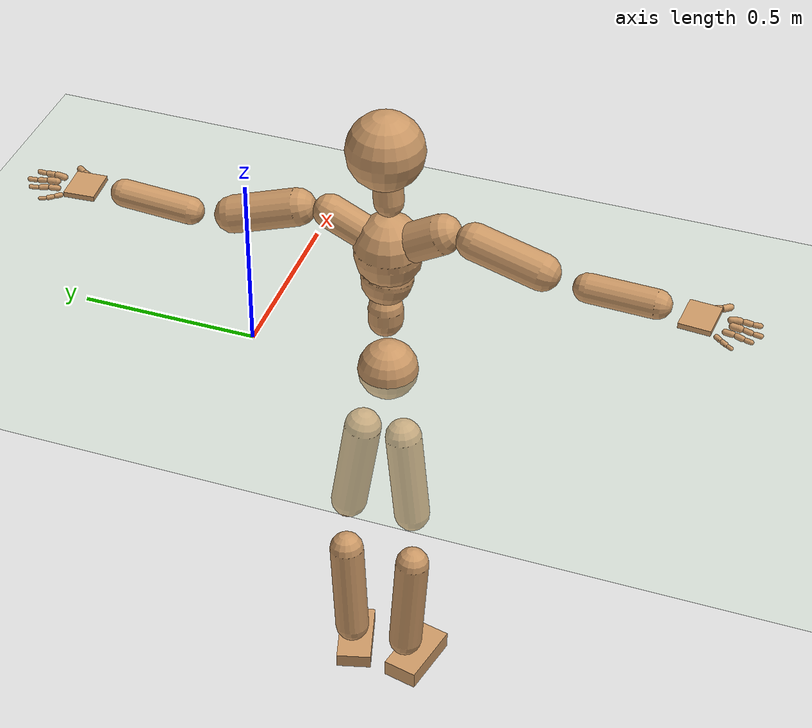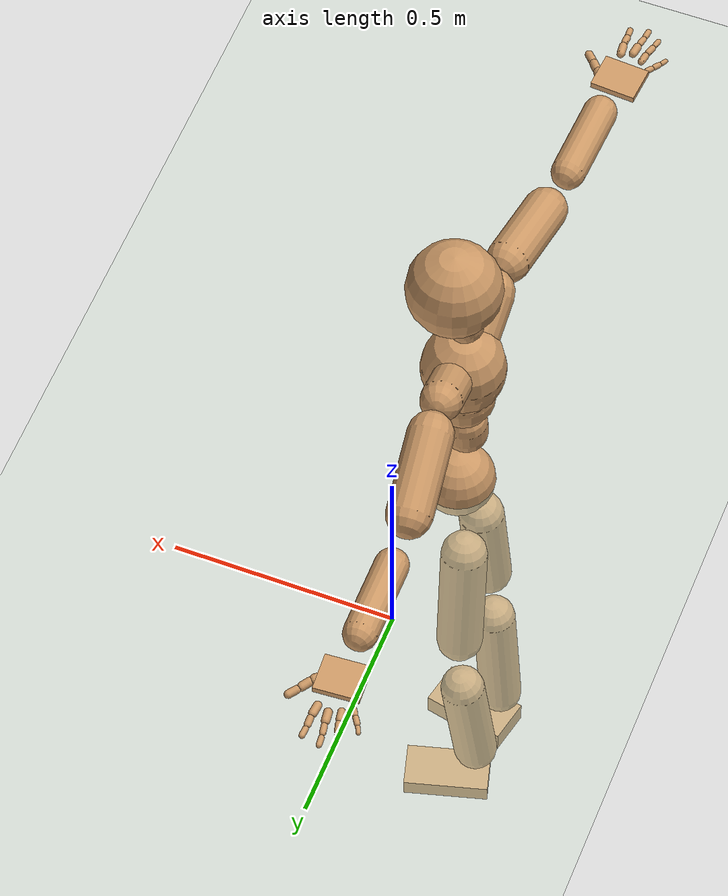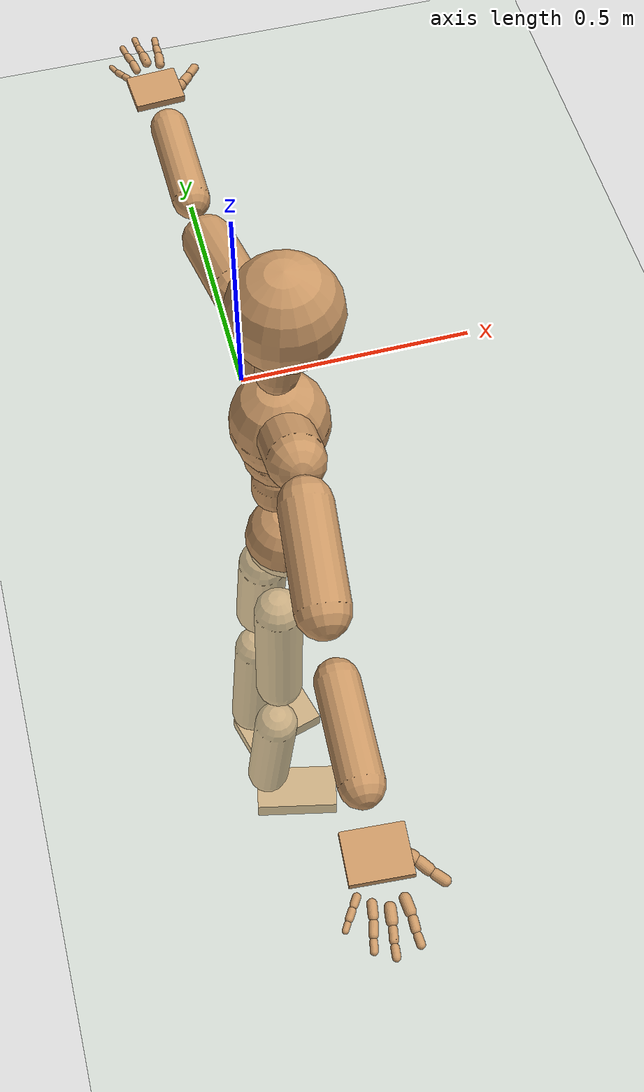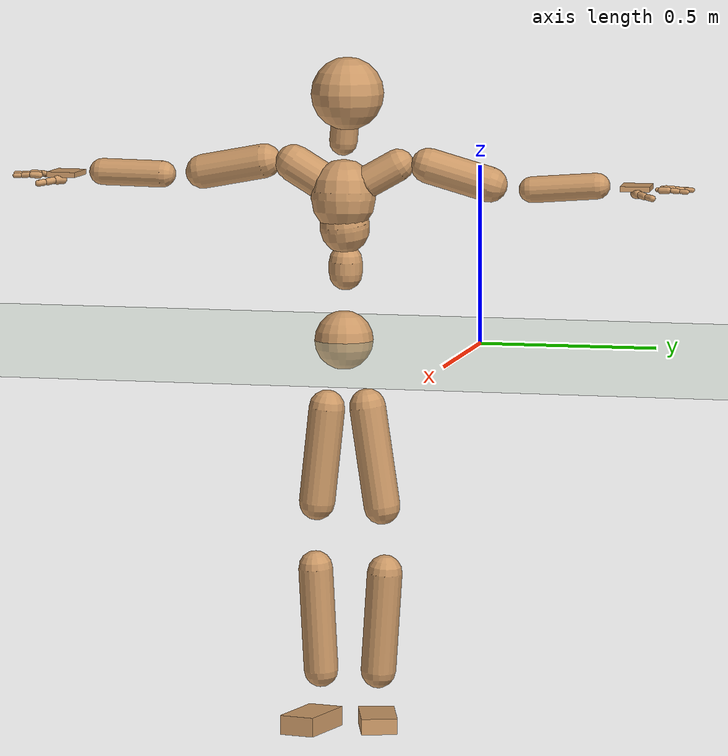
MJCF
<mujoco model="humanoid">
  <compiler coordinate="local" angle="radian"/>
  <default>
    <joint damping="0.0" armature="0.01" stiffness="0.0" limited="true"/>
    <geom conaffinity="1" condim="3" contype="7" margin="0.001" rgba="0.8 0.6 .4 1"/>
  </default>
  <asset>
    <texture type="skybox" builtin="gradient" rgb1=".4 .5 .6" rgb2="0 0 0" width="100" height="100"/>
    <texture builtin="flat" height="1278" mark="cross" markrgb="1 1 1" name="texgeom" random="0.01" rgb1="0.8 0.6 0.4" rgb2="0.8 0.6 0.4" type="cube" width="127"/>
    <texture builtin="checker" height="100" name="texplane" rgb1="0 0 0" rgb2="0.8 0.8 0.8" type="2d" width="100"/>
    <material name="MatPlane" reflectance="0.5" shininess="1" specular="1" texrepeat="60 60" texture="texplane"/>
    <material name="geom" texture="texgeom" texuniform="true"/>
  </asset>
  <worldbody>
    <light cutoff="100" diffuse="1 1 1" dir="-0 0 -1.3" directional="true" exponent="1" pos="0 0 1.3" specular=".1 .1 .1"/>
    <geom conaffinity="1" condim="3" name="floor" pos="0 0 0" rgba="0.8 0.9 0.8 1" size="100 100 .2" type="plane" material="MatPlane"/>
    <body name="Pelvis" pos="0.0002 -0.3917 -0.0027">
      <freejoint name="Pelvis"/>
      <geom type="sphere" contype="1" conaffinity="1" density="500" size="0.0834" pos="0.0000 0.0000 0.0000" name="Pelvis"/>
      <body name="L_Hip" pos="-0.0365 0.0457 -0.0985">
        <joint name="L_Hip_x" type="hinge" pos="0 0 0" axis="1 0 0" stiffness="800" damping="80" armature="0.02" range="-180.0000 180.0000"/>
        <joint name="L_Hip_y" type="hinge" pos="0 0 0" axis="0 1 0" stiffness="800" damping="80" armature="0.02" range="-180.0000 180.0000"/>
        <joint name="L_Hip_z" type="hinge" pos="0 0 0" axis="0 0 1" stiffness="800" damping="80" armature="0.02" range="-180.0000 180.0000"/>
        <geom type="capsule" contype="1" conaffinity="1" density="500" fromto="-0.0025 0.0135 -0.0950 -0.0101 0.0540 -0.3799" size="0.0519" name="L_Hip"/>
        <body name="L_Knee" pos="-0.0126 0.0675 -0.4749">
          <joint name="L_Knee_x" type="hinge" pos="0 0 0" axis="1 0 0" stiffness="800" damping="80" armature="0.02" range="-180.0000 180.0000"/>
          <joint name="L_Knee_y" type="hinge" pos="0 0 0" axis="0 1 0" stiffness="800" damping="80" armature="0.02" range="-180.0000 180.0000"/>
          <joint name="L_Knee_z" type="hinge" pos="0 0 0" axis="0 0 1" stiffness="800" damping="80" armature="0.02" range="-180.0000 180.0000"/>
          <geom type="capsule" contype="1" conaffinity="1" density="500" fromto="-0.0087 -0.0080 -0.0964 -0.0349 -0.0319 -0.3854" size="0.05" name="L_Knee"/>
          <body name="L_Ankle" pos="-0.0437 -0.0399 -0.4818">
            <joint name="L_Ankle_x" type="hinge" pos="0 0 0" axis="1 0 0" stiffness="800" damping="80" armature="0.02" range="-180.0000 180.0000"/>
            <joint name="L_Ankle_y" type="hinge" pos="0 0 0" axis="0 1 0" stiffness="800" damping="80" armature="0.02" range="-180.0000 180.0000"/>
            <joint name="L_Ankle_z" type="hinge" pos="0 0 0" axis="0 0 1" stiffness="800" damping="80" armature="0.02" range="-180.0000 180.0000"/>
            <geom type="box" contype="1" conaffinity="1" density="500" pos="0.0730 0.0202 -0.0355" size="0.0982 0.0512 0.0224" quat="0.9909 0.0000 0.0000 0.1343" name="L_Ankle"/>
            <body name="L_Toe" pos="0.146 0.0403 -0.0709">
              <joint name="L_Toe_x" type="hinge" pos="0 0 0" axis="1 0 0" stiffness="500" damping="50" armature="0.02" range="-180.0000 180.0000"/>
              <joint name="L_Toe_y" type="hinge" pos="0 0 0" axis="0 1 0" stiffness="500" damping="50" armature="0.02" range="-180.0000 180.0000"/>
              <joint name="L_Toe_z" type="hinge" pos="0 0 0" axis="0 0 1" stiffness="500" damping="50" armature="0.02" range="-180.0000 180.0000"/>
              <geom type="box" contype="1" conaffinity="1" density="500" pos="0.0000 0.0000 0.0345" size="0.001 0.0025 0.0011" quat="0.9903 0.0000 0.0000 0.1388" name="L_Toe"/>
            </body>
          </body>
        </body>
      </body>
      <body name="R_Hip" pos="-0.0316 -0.0471 -0.1085">
        <joint name="R_Hip_x" type="hinge" pos="0 0 0" axis="1 0 0" stiffness="800" damping="80" armature="0.02" range="-180.0000 180.0000"/>
        <joint name="R_Hip_y" type="hinge" pos="0 0 0" axis="0 1 0" stiffness="800" damping="80" armature="0.02" range="-180.0000 180.0000"/>
        <joint name="R_Hip_z" type="hinge" pos="0 0 0" axis="0 0 1" stiffness="800" damping="80" armature="0.02" range="-180.0000 180.0000"/>
        <geom type="capsule" contype="1" conaffinity="1" density="500" fromto="-0.0037 -0.0105 -0.0911 -0.0150 -0.0421 -0.3644" size="0.0511" name="R_Hip"/>
        <body name="R_Knee" pos="-0.0187 -0.0526 -0.4555">
          <joint name="R_Knee_x" type="hinge" pos="0 0 0" axis="1 0 0" stiffness="800" damping="80" armature="0.02" range="-180.0000 180.0000"/>
          <joint name="R_Knee_y" type="hinge" pos="0 0 0" axis="0 1 0" stiffness="800" damping="80" armature="0.02" range="-180.0000 180.0000"/>
          <joint name="R_Knee_z" type="hinge" pos="0 0 0" axis="0 0 1" stiffness="800" damping="80" armature="0.02" range="-180.0000 180.0000"/>
          <geom type="capsule" contype="1" conaffinity="1" density="500" fromto="-0.0082 0.0034 -0.0998 -0.0329 0.0135 -0.3993" size="0.0489" name="R_Knee"/>
          <body name="R_Ankle" pos="-0.0411 0.0169 -0.4991">
            <joint name="R_Ankle_x" type="hinge" pos="0 0 0" axis="1 0 0" stiffness="800" damping="80" armature="0.02" range="-180.0000 180.0000"/>
            <joint name="R_Ankle_y" type="hinge" pos="0 0 0" axis="0 1 0" stiffness="800" damping="80" armature="0.02" range="-180.0000 180.0000"/>
            <joint name="R_Ankle_z" type="hinge" pos="0 0 0" axis="0 0 1" stiffness="800" damping="80" armature="0.02" range="-180.0000 180.0000"/>
            <geom type="box" contype="1" conaffinity="1" density="500" pos="0.0760 -0.0165 -0.0349" size="0.0982 0.0512 0.0274" quat="0.9943 0.0000 0.0000 -0.1068" name="R_Ankle"/>
            <body name="R_Toe" pos="0.1519 -0.033 -0.0698">
              <joint name="R_Toe_x" type="hinge" pos="0 0 0" axis="1 0 0" stiffness="500" damping="50" armature="0.02" range="-180.0000 180.0000"/>
              <joint name="R_Toe_y" type="hinge" pos="0 0 0" axis="0 1 0" stiffness="500" damping="50" armature="0.02" range="-180.0000 180.0000"/>
              <joint name="R_Toe_z" type="hinge" pos="0 0 0" axis="0 0 1" stiffness="500" damping="50" armature="0.02" range="-180.0000 180.0000"/>
              <geom type="box" contype="1" conaffinity="1" density="500" pos="0.0000 0.0000 0.0288" size="0.001 0.0025 0.0011" quat="0.9951 0.0000 0.0000 -0.0993" name="R_Toe"/>
            </body>
          </body>
        </body>
      </body>
      <body name="Torso" pos="-0.0215 -0.0007 0.1192">
        <joint name="Torso_x" type="hinge" pos="0 0 0" axis="1 0 0" stiffness="1000" damping="100" armature="0.02" range="-180.0000 180.0000"/>
        <joint name="Torso_y" type="hinge" pos="0 0 0" axis="0 1 0" stiffness="1000" damping="100" armature="0.02" range="-180.0000 180.0000"/>
        <joint name="Torso_z" type="hinge" pos="0 0 0" axis="0 0 1" stiffness="1000" damping="100" armature="0.02" range="-180.0000 180.0000"/>
        <geom type="capsule" contype="1" conaffinity="1" density="500" fromto="0.0055 0.0023 0.1021 0.0037 0.0015 0.0680" size="0.0476" name="Torso"/>
        <body name="Spine" pos="0.0092 0.0038 0.1701">
          <joint name="Spine_x" type="hinge" pos="0 0 0" axis="1 0 0" stiffness="1000" damping="100" armature="0.02" range="-180.0000 180.0000"/>
          <joint name="Spine_y" type="hinge" pos="0 0 0" axis="0 1 0" stiffness="1000" damping="100" armature="0.02" range="-180.0000 180.0000"/>
          <joint name="Spine_z" type="hinge" pos="0 0 0" axis="0 0 1" stiffness="1000" damping="100" armature="0.02" range="-180.0000 180.0000"/>
          <geom type="capsule" contype="1" conaffinity="1" density="500" fromto="0.0045 -0.0036 0.0377 0.0030 -0.0024 0.0251" size="0.0702" name="Spine"/>
          <body name="Chest" pos="0.0076 -0.006 0.0628">
            <joint name="Chest_x" type="hinge" pos="0 0 0" axis="1 0 0" stiffness="1000" damping="100" armature="0.02" range="-180.0000 180.0000"/>
            <joint name="Chest_y" type="hinge" pos="0 0 0" axis="0 1 0" stiffness="1000" damping="100" armature="0.02" range="-180.0000 180.0000"/>
            <joint name="Chest_z" type="hinge" pos="0 0 0" axis="0 0 1" stiffness="1000" damping="100" armature="0.02" range="-180.0000 180.0000"/>
            <geom type="capsule" contype="1" conaffinity="1" density="500" fromto="-0.0027 -0.0001 0.0674 -0.0018 -0.0001 0.0449" size="0.0916" name="Chest"/>
            <body name="Neck" pos="-0.0097 -0.0049 0.1747">
              <joint name="Neck_x" type="hinge" pos="0 0 0" axis="1 0 0" stiffness="500" damping="50" armature="0.02" range="-180.0000 180.0000"/>
              <joint name="Neck_y" type="hinge" pos="0 0 0" axis="0 1 0" stiffness="500" damping="50" armature="0.02" range="-180.0000 180.0000"/>
              <joint name="Neck_z" type="hinge" pos="0 0 0" axis="0 0 1" stiffness="500" damping="50" armature="0.02" range="-180.0000 180.0000"/>
              <geom type="capsule" contype="1" conaffinity="1" density="500" fromto="0.0050 0.0041 0.0342 0.0199 0.0162 0.1367" size="0.0397" name="Neck"/>
              <body name="Head" pos="0.0248 0.0203 0.1709">
                <joint name="Head_x" type="hinge" pos="0 0 0" axis="1 0 0" stiffness="500" damping="50" armature="0.02" range="-180.0000 180.0000"/>
                <joint name="Head_y" type="hinge" pos="0 0 0" axis="0 1 0" stiffness="500" damping="50" armature="0.02" range="-180.0000 180.0000"/>
                <joint name="Head_z" type="hinge" pos="0 0 0" axis="0 0 1" stiffness="500" damping="50" armature="0.02" range="-180.0000 180.0000"/>
                <geom type="sphere" contype="1" conaffinity="1" density="500" size="0.1029" pos="0.0000 0.0000 0.0000" name="Head"/>
              </body>
            </body>
            <body name="L_Thorax" pos="0.001 0.0427 0.0812">
              <joint name="L_Thorax_x" type="hinge" pos="0 0 0" axis="1 0 0" stiffness="500" damping="50" armature="0.02" range="-180.0000 180.0000"/>
              <joint name="L_Thorax_y" type="hinge" pos="0 0 0" axis="0 1 0" stiffness="500" damping="50" armature="0.02" range="-180.0000 180.0000"/>
              <joint name="L_Thorax_z" type="hinge" pos="0 0 0" axis="0 0 1" stiffness="500" damping="50" armature="0.02" range="-180.0000 180.0000"/>
              <geom type="capsule" contype="1" conaffinity="1" density="500" fromto="-0.0029 0.0281 0.0160 -0.0118 0.1122 0.0641" size="0.0455" name="L_Thorax"/>
              <body name="L_Shoulder" pos="-0.0147 0.1403 0.0801">
                <joint name="L_Shoulder_x" type="hinge" pos="0 0 0" axis="1 0 0" stiffness="500" damping="50" armature="0.02" range="-180.0000 180.0000"/>
                <joint name="L_Shoulder_y" type="hinge" pos="0 0 0" axis="0 1 0" stiffness="500" damping="50" armature="0.02" range="-180.0000 180.0000"/>
                <joint name="L_Shoulder_z" type="hinge" pos="0 0 0" axis="0 0 1" stiffness="500" damping="50" armature="0.02" range="-180.0000 180.0000"/>
                <geom type="capsule" contype="1" conaffinity="1" density="500" fromto="-0.0064 0.0572 -0.0170 -0.0256 0.2288 -0.0682" size="0.0498" name="L_Shoulder"/>
                <body name="L_Elbow" pos="-0.032 0.286 -0.0852">
                  <joint name="L_Elbow_x" type="hinge" pos="0 0 0" axis="1 0 0" stiffness="500" damping="50" armature="0.02" range="-720.0000 720.0000"/>
                  <joint name="L_Elbow_y" type="hinge" pos="0 0 0" axis="0 1 0" stiffness="500" damping="50" armature="0.02" range="-720.0000 720.0000"/>
                  <joint name="L_Elbow_z" type="hinge" pos="0 0 0" axis="0 0 1" stiffness="500" damping="50" armature="0.02" range="-720.0000 720.0000"/>
                  <geom type="capsule" contype="1" conaffinity="1" density="500" fromto="-0.0013 0.0614 0.0047 -0.0052 0.2458 0.0190" size="0.0369" name="L_Elbow"/>
                  <body name="L_Wrist" pos="-0.0065 0.3072 0.0237">
                    <joint name="L_Wrist_x" type="hinge" pos="0 0 0" axis="1 0 0" stiffness="300" damping="30" armature="0.02" range="-180.0000 180.0000"/>
                    <joint name="L_Wrist_y" type="hinge" pos="0 0 0" axis="0 1 0" stiffness="300" damping="30" armature="0.02" range="-180.0000 180.0000"/>
                    <joint name="L_Wrist_z" type="hinge" pos="0 0 0" axis="0 0 1" stiffness="300" damping="30" armature="0.02" range="-180.0000 180.0000"/>
                    <geom type="box" contype="1" conaffinity="1" density="500" pos="-0.0033 0.0498 -0.0068" size="0.0418 0.0492 0.0073" quat="0.7299 0.0000 0.0000 -0.6835" name="L_Wrist"/>
                    <body name="L_Index1" pos="0.0194 0.1158 -0.0109">
                      <joint name="L_Index1_x" type="hinge" pos="0 0 0" axis="1 0 0" stiffness="100" damping="10" armature="0.02" range="-180.0000 180.0000"/>
                      <joint name="L_Index1_y" type="hinge" pos="0 0 0" axis="0 1 0" stiffness="100" damping="10" armature="0.02" range="-180.0000 180.0000"/>
                      <joint name="L_Index1_z" type="hinge" pos="0 0 0" axis="0 0 1" stiffness="100" damping="10" armature="0.02" range="-180.0000 180.0000"/>
                      <geom type="capsule" contype="1" conaffinity="1" density="500" fromto="0.0006 0.0070 0.0003 0.0026 0.0280 0.0011" size="0.0092" name="L_Index1"/>
                      <body name="L_Index2" pos="0.0032 0.035 0.0013">
                        <joint name="L_Index2_x" type="hinge" pos="0 0 0" axis="1 0 0" stiffness="100" damping="10" armature="0.02" range="-180.0000 180.0000"/>
                        <joint name="L_Index2_y" type="hinge" pos="0 0 0" axis="0 1 0" stiffness="100" damping="10" armature="0.02" range="-180.0000 180.0000"/>
                        <joint name="L_Index2_z" type="hinge" pos="0 0 0" axis="0 0 1" stiffness="100" damping="10" armature="0.02" range="-180.0000 180.0000"/>
                        <geom type="capsule" contype="1" conaffinity="1" density="500" fromto="-0.0000 0.0050 -0.0005 -0.0002 0.0198 -0.0022" size="0.0077" name="L_Index2"/>
                        <body name="L_Index3" pos="-0.0002 0.0248 -0.0027">
                          <joint name="L_Index3_x" type="hinge" pos="0 0 0" axis="1 0 0" stiffness="100" damping="10" armature="0.02" range="-180.0000 180.0000"/>
                          <joint name="L_Index3_y" type="hinge" pos="0 0 0" axis="0 1 0" stiffness="100" damping="10" armature="0.02" range="-180.0000 180.0000"/>
                          <joint name="L_Index3_z" type="hinge" pos="0 0 0" axis="0 0 1" stiffness="100" damping="10" armature="0.02" range="-180.0000 180.0000"/>
                          <geom type="capsule" contype="1" conaffinity="1" density="500" fromto="0.0004 0.0054 -0.0001 0.0014 0.0214 -0.0006" size="0.0066" name="L_Index3"/>
                        </body>
                      </body>
                    </body>
                    <body name="L_Middle1" pos="-0.0047 0.1245 -0.0085">
                      <joint name="L_Middle1_x" type="hinge" pos="0 0 0" axis="1 0 0" stiffness="100" damping="10" armature="0.02" range="-180.0000 180.0000"/>
                      <joint name="L_Middle1_y" type="hinge" pos="0 0 0" axis="0 1 0" stiffness="100" damping="10" armature="0.02" range="-180.0000 180.0000"/>
                      <joint name="L_Middle1_z" type="hinge" pos="0 0 0" axis="0 0 1" stiffness="100" damping="10" armature="0.02" range="-180.0000 180.0000"/>
                      <geom type="capsule" contype="1" conaffinity="1" density="500" fromto="-0.0009 0.0067 0.0000 -0.0037 0.0267 0.0000" size="0.0093" name="L_Middle1"/>
                      <body name="L_Middle2" pos="-0.0046 0.0334 0">
                        <joint name="L_Middle2_x" type="hinge" pos="0 0 0" axis="1 0 0" stiffness="100" damping="10" armature="0.02" range="-180.0000 180.0000"/>
                        <joint name="L_Middle2_y" type="hinge" pos="0 0 0" axis="0 1 0" stiffness="100" damping="10" armature="0.02" range="-180.0000 180.0000"/>
                        <joint name="L_Middle2_z" type="hinge" pos="0 0 0" axis="0 0 1" stiffness="100" damping="10" armature="0.02" range="-180.0000 180.0000"/>
                        <geom type="capsule" contype="1" conaffinity="1" density="500" fromto="-0.0009 0.0052 -0.0005 -0.0037 0.0207 -0.0021" size="0.007" name="L_Middle2"/>
                        <body name="L_Middle3" pos="-0.0046 0.0259 -0.0027">
                          <joint name="L_Middle3_x" type="hinge" pos="0 0 0" axis="1 0 0" stiffness="100" damping="10" armature="0.02" range="-180.0000 180.0000"/>
                          <joint name="L_Middle3_y" type="hinge" pos="0 0 0" axis="0 1 0" stiffness="100" damping="10" armature="0.02" range="-180.0000 180.0000"/>
                          <joint name="L_Middle3_z" type="hinge" pos="0 0 0" axis="0 0 1" stiffness="100" damping="10" armature="0.02" range="-180.0000 180.0000"/>
                          <geom type="capsule" contype="1" conaffinity="1" density="500" fromto="-0.0005 0.0056 -0.0001 -0.0021 0.0223 -0.0005" size="0.0064" name="L_Middle3"/>
                        </body>
                      </body>
                    </body>
                    <body name="L_Pinky1" pos="-0.0456 0.0977 -0.0163">
                      <joint name="L_Pinky1_x" type="hinge" pos="0 0 0" axis="1 0 0" stiffness="100" damping="10" armature="0.02" range="-180.0000 180.0000"/>
                      <joint name="L_Pinky1_y" type="hinge" pos="0 0 0" axis="0 1 0" stiffness="100" damping="10" armature="0.02" range="-180.0000 180.0000"/>
                      <joint name="L_Pinky1_z" type="hinge" pos="0 0 0" axis="0 0 1" stiffness="100" damping="10" armature="0.02" range="-180.0000 180.0000"/>
                      <geom type="capsule" contype="1" conaffinity="1" density="500" fromto="-0.0024 0.0035 -0.0003 -0.0095 0.0140 -0.0012" size="0.0066" name="L_Pinky1"/>
                      <body name="L_Pinky2" pos="-0.0119 0.0176 -0.0015">
                        <joint name="L_Pinky2_x" type="hinge" pos="0 0 0" axis="1 0 0" stiffness="100" damping="10" armature="0.02" range="-180.0000 180.0000"/>
                        <joint name="L_Pinky2_y" type="hinge" pos="0 0 0" axis="0 1 0" stiffness="100" damping="10" armature="0.02" range="-180.0000 180.0000"/>
                        <joint name="L_Pinky2_z" type="hinge" pos="0 0 0" axis="0 0 1" stiffness="100" damping="10" armature="0.02" range="-180.0000 180.0000"/>
                        <geom type="capsule" contype="1" conaffinity="1" density="500" fromto="-0.0023 0.0034 -0.0003 -0.0092 0.0138 -0.0013" size="0.0064" name="L_Pinky2"/>
                        <body name="L_Pinky3" pos="-0.0116 0.0172 -0.0017">
                          <joint name="L_Pinky3_x" type="hinge" pos="0 0 0" axis="1 0 0" stiffness="100" damping="10" armature="0.02" range="-180.0000 180.0000"/>
                          <joint name="L_Pinky3_y" type="hinge" pos="0 0 0" axis="0 1 0" stiffness="100" damping="10" armature="0.02" range="-180.0000 180.0000"/>
                          <joint name="L_Pinky3_z" type="hinge" pos="0 0 0" axis="0 0 1" stiffness="100" damping="10" armature="0.02" range="-180.0000 180.0000"/>
                          <geom type="capsule" contype="1" conaffinity="1" density="500" fromto="-0.0019 0.0038 0.0001 -0.0076 0.0154 0.0003" size="0.005" name="L_Pinky3"/>
                        </body>
                      </body>
                    </body>
                    <body name="L_Ring1" pos="-0.0284 0.1119 -0.0112">
                      <joint name="L_Ring1_x" type="hinge" pos="0 0 0" axis="1 0 0" stiffness="100" damping="10" armature="0.02" range="-180.0000 180.0000"/>
                      <joint name="L_Ring1_y" type="hinge" pos="0 0 0" axis="0 1 0" stiffness="100" damping="10" armature="0.02" range="-180.0000 180.0000"/>
                      <joint name="L_Ring1_z" type="hinge" pos="0 0 0" axis="0 0 1" stiffness="100" damping="10" armature="0.02" range="-180.0000 180.0000"/>
                      <geom type="capsule" contype="1" conaffinity="1" density="500" fromto="-0.0010 0.0062 0.0001 -0.0042 0.0246 0.0004" size="0.0079" name="L_Ring1"/>
                      <body name="L_Ring2" pos="-0.0052 0.0308 0.0005">
                        <joint name="L_Ring2_x" type="hinge" pos="0 0 0" axis="1 0 0" stiffness="100" damping="10" armature="0.02" range="-180.0000 180.0000"/>
                        <joint name="L_Ring2_y" type="hinge" pos="0 0 0" axis="0 1 0" stiffness="100" damping="10" armature="0.02" range="-180.0000 180.0000"/>
                        <joint name="L_Ring2_z" type="hinge" pos="0 0 0" axis="0 0 1" stiffness="100" damping="10" armature="0.02" range="-180.0000 180.0000"/>
                        <geom type="capsule" contype="1" conaffinity="1" density="500" fromto="-0.0014 0.0050 -0.0004 -0.0057 0.0200 -0.0017" size="0.0075" name="L_Ring2"/>
                        <body name="L_Ring3" pos="-0.0071 0.0251 -0.0022">
                          <joint name="L_Ring3_x" type="hinge" pos="0 0 0" axis="1 0 0" stiffness="100" damping="10" armature="0.02" range="-180.0000 180.0000"/>
                          <joint name="L_Ring3_y" type="hinge" pos="0 0 0" axis="0 1 0" stiffness="100" damping="10" armature="0.02" range="-180.0000 180.0000"/>
                          <joint name="L_Ring3_z" type="hinge" pos="0 0 0" axis="0 0 1" stiffness="100" damping="10" armature="0.02" range="-180.0000 180.0000"/>
                          <geom type="capsule" contype="1" conaffinity="1" density="500" fromto="-0.0010 0.0054 -0.0000 -0.0041 0.0216 -0.0001" size="0.006" name="L_Ring3"/>
                        </body>
                      </body>
                    </body>
                    <body name="L_Thumb1" pos="0.0267 0.0478 -0.0207">
                      <joint name="L_Thumb1_x" type="hinge" pos="0 0 0" axis="1 0 0" stiffness="100" damping="10" armature="0.02" range="-180.0000 180.0000"/>
                      <joint name="L_Thumb1_y" type="hinge" pos="0 0 0" axis="0 1 0" stiffness="100" damping="10" armature="0.02" range="-180.0000 180.0000"/>
                      <joint name="L_Thumb1_z" type="hinge" pos="0 0 0" axis="0 0 1" stiffness="100" damping="10" armature="0.02" range="-180.0000 180.0000"/>
                      <geom type="capsule" contype="1" conaffinity="1" density="500" fromto="0.0056 0.0038 0.0002 0.0223 0.0154 0.0007" size="0.0126" name="L_Thumb1"/>
                      <body name="L_Thumb2" pos="0.0278 0.0192 0.0009">
                        <joint name="L_Thumb2_x" type="hinge" pos="0 0 0" axis="1 0 0" stiffness="100" damping="10" armature="0.02" range="-180.0000 180.0000"/>
                        <joint name="L_Thumb2_y" type="hinge" pos="0 0 0" axis="0 1 0" stiffness="100" damping="10" armature="0.02" range="-180.0000 180.0000"/>
                        <joint name="L_Thumb2_z" type="hinge" pos="0 0 0" axis="0 0 1" stiffness="100" damping="10" armature="0.02" range="-180.0000 180.0000"/>
                        <geom type="capsule" contype="1" conaffinity="1" density="500" fromto="0.0035 0.0047 -0.0009 0.0142 0.0187 -0.0036" size="0.0099" name="L_Thumb2"/>
                        <body name="L_Thumb3" pos="0.0177 0.0234 -0.0044">
                          <joint name="L_Thumb3_x" type="hinge" pos="0 0 0" axis="1 0 0" stiffness="100" damping="10" armature="0.02" range="-180.0000 180.0000"/>
                          <joint name="L_Thumb3_y" type="hinge" pos="0 0 0" axis="0 1 0" stiffness="100" damping="10" armature="0.02" range="-180.0000 180.0000"/>
                          <joint name="L_Thumb3_z" type="hinge" pos="0 0 0" axis="0 0 1" stiffness="100" damping="10" armature="0.02" range="-180.0000 180.0000"/>
                          <geom type="capsule" contype="1" conaffinity="1" density="500" fromto="0.0039 0.0051 -0.0005 0.0158 0.0203 -0.0020" size="0.009" name="L_Thumb3"/>
                        </body>
                      </body>
                    </body>
                  </body>
                </body>
              </body>
            </body>
            <body name="R_Thorax" pos="-0.0046 -0.0384 0.0809">
              <joint name="R_Thorax_x" type="hinge" pos="0 0 0" axis="1 0 0" stiffness="500" damping="50" armature="0.02" range="-180.0000 180.0000"/>
              <joint name="R_Thorax_y" type="hinge" pos="0 0 0" axis="0 1 0" stiffness="500" damping="50" armature="0.02" range="-180.0000 180.0000"/>
              <joint name="R_Thorax_z" type="hinge" pos="0 0 0" axis="0 0 1" stiffness="500" damping="50" armature="0.02" range="-180.0000 180.0000"/>
              <geom type="capsule" contype="1" conaffinity="1" density="500" fromto="-0.0007 -0.0264 0.0158 -0.0027 -0.1056 0.0630" size="0.0531" name="R_Thorax"/>
              <body name="R_Shoulder" pos="-0.0034 -0.132 0.0788">
                <joint name="R_Shoulder_x" type="hinge" pos="0 0 0" axis="1 0 0" stiffness="500" damping="50" armature="0.02" range="-180.0000 180.0000"/>
                <joint name="R_Shoulder_y" type="hinge" pos="0 0 0" axis="0 1 0" stiffness="500" damping="50" armature="0.02" range="-180.0000 180.0000"/>
                <joint name="R_Shoulder_z" type="hinge" pos="0 0 0" axis="0 0 1" stiffness="500" damping="50" armature="0.02" range="-180.0000 180.0000"/>
                <geom type="capsule" contype="1" conaffinity="1" density="500" fromto="-0.0059 -0.0609 -0.0120 -0.0235 -0.2438 -0.0482" size="0.0486" name="R_Shoulder"/>
                <body name="R_Elbow" pos="-0.0294 -0.3047 -0.0602">
                  <joint name="R_Elbow_x" type="hinge" pos="0 0 0" axis="1 0 0" stiffness="500" damping="50" armature="0.02" range="-720.0000 720.0000"/>
                  <joint name="R_Elbow_y" type="hinge" pos="0 0 0" axis="0 1 0" stiffness="500" damping="50" armature="0.02" range="-720.0000 720.0000"/>
                  <joint name="R_Elbow_z" type="hinge" pos="0 0 0" axis="0 0 1" stiffness="500" damping="50" armature="0.02" range="-720.0000 720.0000"/>
                  <geom type="capsule" contype="1" conaffinity="1" density="500" fromto="-0.0029 -0.0592 0.0007 -0.0114 -0.2369 0.0028" size="0.0379" name="R_Elbow"/>
                  <body name="R_Wrist" pos="-0.0143 -0.2961 0.0035">
                    <joint name="R_Wrist_x" type="hinge" pos="0 0 0" axis="1 0 0" stiffness="300" damping="30" armature="0.02" range="-180.0000 180.0000"/>
                    <joint name="R_Wrist_y" type="hinge" pos="0 0 0" axis="0 1 0" stiffness="300" damping="30" armature="0.02" range="-180.0000 180.0000"/>
                    <joint name="R_Wrist_z" type="hinge" pos="0 0 0" axis="0 0 1" stiffness="300" damping="30" armature="0.02" range="-180.0000 180.0000"/>
                    <geom type="box" contype="1" conaffinity="1" density="500" pos="-0.0036 -0.0496 -0.0084" size="0.0418 0.0507 0.0074" quat="0.7325 0.0000 0.0000 0.6808" name="R_Wrist"/>
                    <body name="R_Index1" pos="0.0186 -0.1154 -0.0141">
                      <joint name="R_Index1_x" type="hinge" pos="0 0 0" axis="1 0 0" stiffness="100" damping="10" armature="0.02" range="-180.0000 180.0000"/>
                      <joint name="R_Index1_y" type="hinge" pos="0 0 0" axis="0 1 0" stiffness="100" damping="10" armature="0.02" range="-180.0000 180.0000"/>
                      <joint name="R_Index1_z" type="hinge" pos="0 0 0" axis="0 0 1" stiffness="100" damping="10" armature="0.02" range="-180.0000 180.0000"/>
                      <geom type="capsule" contype="1" conaffinity="1" density="500" fromto="0.0006 -0.0070 0.0003 0.0026 -0.0280 0.0011" size="0.0092" name="R_Index1"/>
                      <body name="R_Index2" pos="0.0032 -0.035 0.0013">
                        <joint name="R_Index2_x" type="hinge" pos="0 0 0" axis="1 0 0" stiffness="100" damping="10" armature="0.02" range="-180.0000 180.0000"/>
                        <joint name="R_Index2_y" type="hinge" pos="0 0 0" axis="0 1 0" stiffness="100" damping="10" armature="0.02" range="-180.0000 180.0000"/>
                        <joint name="R_Index2_z" type="hinge" pos="0 0 0" axis="0 0 1" stiffness="100" damping="10" armature="0.02" range="-180.0000 180.0000"/>
                        <geom type="capsule" contype="1" conaffinity="1" density="500" fromto="-0.0000 -0.0050 -0.0005 -0.0002 -0.0198 -0.0022" size="0.0077" name="R_Index2"/>
                        <body name="R_Index3" pos="-0.0002 -0.0248 -0.0027">
                          <joint name="R_Index3_x" type="hinge" pos="0 0 0" axis="1 0 0" stiffness="100" damping="10" armature="0.02" range="-180.0000 180.0000"/>
                          <joint name="R_Index3_y" type="hinge" pos="0 0 0" axis="0 1 0" stiffness="100" damping="10" armature="0.02" range="-180.0000 180.0000"/>
                          <joint name="R_Index3_z" type="hinge" pos="0 0 0" axis="0 0 1" stiffness="100" damping="10" armature="0.02" range="-180.0000 180.0000"/>
                          <geom type="capsule" contype="1" conaffinity="1" density="500" fromto="0.0004 -0.0046 -0.0001 0.0014 -0.0182 -0.0006" size="0.0069" name="R_Index3"/>
                        </body>
                      </body>
                    </body>
                    <body name="R_Middle1" pos="-0.0054 -0.1241 -0.0117">
                      <joint name="R_Middle1_x" type="hinge" pos="0 0 0" axis="1 0 0" stiffness="100" damping="10" armature="0.02" range="-180.0000 180.0000"/>
                      <joint name="R_Middle1_y" type="hinge" pos="0 0 0" axis="0 1 0" stiffness="100" damping="10" armature="0.02" range="-180.0000 180.0000"/>
                      <joint name="R_Middle1_z" type="hinge" pos="0 0 0" axis="0 0 1" stiffness="100" damping="10" armature="0.02" range="-180.0000 180.0000"/>
                      <geom type="capsule" contype="1" conaffinity="1" density="500" fromto="-0.0009 -0.0067 0.0000 -0.0037 -0.0267 0.0000" size="0.0093" name="R_Middle1"/>
                      <body name="R_Middle2" pos="-0.0046 -0.0334 0">
                        <joint name="R_Middle2_x" type="hinge" pos="0 0 0" axis="1 0 0" stiffness="100" damping="10" armature="0.02" range="-180.0000 180.0000"/>
                        <joint name="R_Middle2_y" type="hinge" pos="0 0 0" axis="0 1 0" stiffness="100" damping="10" armature="0.02" range="-180.0000 180.0000"/>
                        <joint name="R_Middle2_z" type="hinge" pos="0 0 0" axis="0 0 1" stiffness="100" damping="10" armature="0.02" range="-180.0000 180.0000"/>
                        <geom type="capsule" contype="1" conaffinity="1" density="500" fromto="-0.0009 -0.0052 -0.0005 -0.0037 -0.0207 -0.0021" size="0.007" name="R_Middle2"/>
                        <body name="R_Middle3" pos="-0.0046 -0.0259 -0.0027">
                          <joint name="R_Middle3_x" type="hinge" pos="0 0 0" axis="1 0 0" stiffness="100" damping="10" armature="0.02" range="-180.0000 180.0000"/>
                          <joint name="R_Middle3_y" type="hinge" pos="0 0 0" axis="0 1 0" stiffness="100" damping="10" armature="0.02" range="-180.0000 180.0000"/>
                          <joint name="R_Middle3_z" type="hinge" pos="0 0 0" axis="0 0 1" stiffness="100" damping="10" armature="0.02" range="-180.0000 180.0000"/>
                          <geom type="capsule" contype="1" conaffinity="1" density="500" fromto="-0.0005 -0.0048 -0.0001 -0.0021 -0.0191 -0.0005" size="0.0067" name="R_Middle3"/>
                        </body>
                      </body>
                    </body>
                    <body name="R_Pinky1" pos="-0.0463 -0.0973 -0.0195">
                      <joint name="R_Pinky1_x" type="hinge" pos="0 0 0" axis="1 0 0" stiffness="100" damping="10" armature="0.02" range="-180.0000 180.0000"/>
                      <joint name="R_Pinky1_y" type="hinge" pos="0 0 0" axis="0 1 0" stiffness="100" damping="10" armature="0.02" range="-180.0000 180.0000"/>
                      <joint name="R_Pinky1_z" type="hinge" pos="0 0 0" axis="0 0 1" stiffness="100" damping="10" armature="0.02" range="-180.0000 180.0000"/>
                      <geom type="capsule" contype="1" conaffinity="1" density="500" fromto="-0.0024 -0.0035 -0.0003 -0.0095 -0.0140 -0.0012" size="0.0066" name="R_Pinky1"/>
                      <body name="R_Pinky2" pos="-0.0119 -0.0176 -0.0015">
                        <joint name="R_Pinky2_x" type="hinge" pos="0 0 0" axis="1 0 0" stiffness="100" damping="10" armature="0.02" range="-180.0000 180.0000"/>
                        <joint name="R_Pinky2_y" type="hinge" pos="0 0 0" axis="0 1 0" stiffness="100" damping="10" armature="0.02" range="-180.0000 180.0000"/>
                        <joint name="R_Pinky2_z" type="hinge" pos="0 0 0" axis="0 0 1" stiffness="100" damping="10" armature="0.02" range="-180.0000 180.0000"/>
                        <geom type="capsule" contype="1" conaffinity="1" density="500" fromto="-0.0023 -0.0034 -0.0003 -0.0092 -0.0138 -0.0013" size="0.0064" name="R_Pinky2"/>
                        <body name="R_Pinky3" pos="-0.0116 -0.0172 -0.0017">
                          <joint name="R_Pinky3_x" type="hinge" pos="0 0 0" axis="1 0 0" stiffness="100" damping="10" armature="0.02" range="-180.0000 180.0000"/>
                          <joint name="R_Pinky3_y" type="hinge" pos="0 0 0" axis="0 1 0" stiffness="100" damping="10" armature="0.02" range="-180.0000 180.0000"/>
                          <joint name="R_Pinky3_z" type="hinge" pos="0 0 0" axis="0 0 1" stiffness="100" damping="10" armature="0.02" range="-180.0000 180.0000"/>
                          <geom type="capsule" contype="1" conaffinity="1" density="500" fromto="-0.0019 -0.0030 0.0001 -0.0076 -0.0122 0.0003" size="0.0052" name="R_Pinky3"/>
                        </body>
                      </body>
                    </body>
                    <body name="R_Ring1" pos="-0.0292 -0.1115 -0.0144">
                      <joint name="R_Ring1_x" type="hinge" pos="0 0 0" axis="1 0 0" stiffness="100" damping="10" armature="0.02" range="-180.0000 180.0000"/>
                      <joint name="R_Ring1_y" type="hinge" pos="0 0 0" axis="0 1 0" stiffness="100" damping="10" armature="0.02" range="-180.0000 180.0000"/>
                      <joint name="R_Ring1_z" type="hinge" pos="0 0 0" axis="0 0 1" stiffness="100" damping="10" armature="0.02" range="-180.0000 180.0000"/>
                      <geom type="capsule" contype="1" conaffinity="1" density="500" fromto="-0.0010 -0.0062 0.0001 -0.0042 -0.0246 0.0004" size="0.0079" name="R_Ring1"/>
                      <body name="R_Ring2" pos="-0.0052 -0.0308 0.0005">
                        <joint name="R_Ring2_x" type="hinge" pos="0 0 0" axis="1 0 0" stiffness="100" damping="10" armature="0.02" range="-180.0000 180.0000"/>
                        <joint name="R_Ring2_y" type="hinge" pos="0 0 0" axis="0 1 0" stiffness="100" damping="10" armature="0.02" range="-180.0000 180.0000"/>
                        <joint name="R_Ring2_z" type="hinge" pos="0 0 0" axis="0 0 1" stiffness="100" damping="10" armature="0.02" range="-180.0000 180.0000"/>
                        <geom type="capsule" contype="1" conaffinity="1" density="500" fromto="-0.0014 -0.0050 -0.0004 -0.0057 -0.0200 -0.0017" size="0.0075" name="R_Ring2"/>
                        <body name="R_Ring3" pos="-0.0071 -0.0251 -0.0022">
                          <joint name="R_Ring3_x" type="hinge" pos="0 0 0" axis="1 0 0" stiffness="100" damping="10" armature="0.02" range="-180.0000 180.0000"/>
                          <joint name="R_Ring3_y" type="hinge" pos="0 0 0" axis="0 1 0" stiffness="100" damping="10" armature="0.02" range="-180.0000 180.0000"/>
                          <joint name="R_Ring3_z" type="hinge" pos="0 0 0" axis="0 0 1" stiffness="100" damping="10" armature="0.02" range="-180.0000 180.0000"/>
                          <geom type="capsule" contype="1" conaffinity="1" density="500" fromto="-0.0010 -0.0046 -0.0000 -0.0041 -0.0184 -0.0001" size="0.0062" name="R_Ring3"/>
                        </body>
                      </body>
                    </body>
                    <body name="R_Thumb1" pos="0.0259 -0.0474 -0.0239">
                      <joint name="R_Thumb1_x" type="hinge" pos="0 0 0" axis="1 0 0" stiffness="100" damping="10" armature="0.02" range="-180.0000 180.0000"/>
                      <joint name="R_Thumb1_y" type="hinge" pos="0 0 0" axis="0 1 0" stiffness="100" damping="10" armature="0.02" range="-180.0000 180.0000"/>
                      <joint name="R_Thumb1_z" type="hinge" pos="0 0 0" axis="0 0 1" stiffness="100" damping="10" armature="0.02" range="-180.0000 180.0000"/>
                      <geom type="capsule" contype="1" conaffinity="1" density="500" fromto="0.0056 -0.0038 0.0002 0.0223 -0.0154 0.0007" size="0.0126" name="R_Thumb1"/>
                      <body name="R_Thumb2" pos="0.0278 -0.0192 0.0009">
                        <joint name="R_Thumb2_x" type="hinge" pos="0 0 0" axis="1 0 0" stiffness="100" damping="10" armature="0.02" range="-180.0000 180.0000"/>
                        <joint name="R_Thumb2_y" type="hinge" pos="0 0 0" axis="0 1 0" stiffness="100" damping="10" armature="0.02" range="-180.0000 180.0000"/>
                        <joint name="R_Thumb2_z" type="hinge" pos="0 0 0" axis="0 0 1" stiffness="100" damping="10" armature="0.02" range="-180.0000 180.0000"/>
                        <geom type="capsule" contype="1" conaffinity="1" density="500" fromto="0.0035 -0.0047 -0.0009 0.0142 -0.0187 -0.0036" size="0.0099" name="R_Thumb2"/>
                        <body name="R_Thumb3" pos="0.0177 -0.0234 -0.0044">
                          <joint name="R_Thumb3_x" type="hinge" pos="0 0 0" axis="1 0 0" stiffness="100" damping="10" armature="0.02" range="-180.0000 180.0000"/>
                          <joint name="R_Thumb3_y" type="hinge" pos="0 0 0" axis="0 1 0" stiffness="100" damping="10" armature="0.02" range="-180.0000 180.0000"/>
                          <joint name="R_Thumb3_z" type="hinge" pos="0 0 0" axis="0 0 1" stiffness="100" damping="10" armature="0.02" range="-180.0000 180.0000"/>
                          <geom type="capsule" contype="1" conaffinity="1" density="500" fromto="0.0039 -0.0043 -0.0005 0.0158 -0.0171 -0.0020" size="0.0092" name="R_Thumb3"/>
                        </body>
                      </body>
                    </body>
                  </body>
                </body>
              </body>
            </body>
          </body>
        </body>
      </body>
    </body>
  </worldbody>
  <actuator>
    <motor name="L_Hip_x" joint="L_Hip_x" gear="500"/>
    <motor name="L_Hip_y" joint="L_Hip_y" gear="500"/>
    <motor name="L_Hip_z" joint="L_Hip_z" gear="500"/>
    <motor name="L_Knee_x" joint="L_Knee_x" gear="500"/>
    <motor name="L_Knee_y" joint="L_Knee_y" gear="500"/>
    <motor name="L_Knee_z" joint="L_Knee_z" gear="500"/>
    <motor name="L_Ankle_x" joint="L_Ankle_x" gear="500"/>
    <motor name="L_Ankle_y" joint="L_Ankle_y" gear="500"/>
    <motor name="L_Ankle_z" joint="L_Ankle_z" gear="500"/>
    <motor name="L_Toe_x" joint="L_Toe_x" gear="500"/>
    <motor name="L_Toe_y" joint="L_Toe_y" gear="500"/>
    <motor name="L_Toe_z" joint="L_Toe_z" gear="500"/>
    <motor name="R_Hip_x" joint="R_Hip_x" gear="500"/>
    <motor name="R_Hip_y" joint="R_Hip_y" gear="500"/>
    <motor name="R_Hip_z" joint="R_Hip_z" gear="500"/>
    <motor name="R_Knee_x" joint="R_Knee_x" gear="500"/>
    <motor name="R_Knee_y" joint="R_Knee_y" gear="500"/>
    <motor name="R_Knee_z" joint="R_Knee_z" gear="500"/>
    <motor name="R_Ankle_x" joint="R_Ankle_x" gear="500"/>
    <motor name="R_Ankle_y" joint="R_Ankle_y" gear="500"/>
    <motor name="R_Ankle_z" joint="R_Ankle_z" gear="500"/>
    <motor name="R_Toe_x" joint="R_Toe_x" gear="500"/>
    <motor name="R_Toe_y" joint="R_Toe_y" gear="500"/>
    <motor name="R_Toe_z" joint="R_Toe_z" gear="500"/>
    <motor name="Torso_x" joint="Torso_x" gear="500"/>
    <motor name="Torso_y" joint="Torso_y" gear="500"/>
    <motor name="Torso_z" joint="Torso_z" gear="500"/>
    <motor name="Spine_x" joint="Spine_x" gear="500"/>
    <motor name="Spine_y" joint="Spine_y" gear="500"/>
    <motor name="Spine_z" joint="Spine_z" gear="500"/>
    <motor name="Chest_x" joint="Chest_x" gear="500"/>
    <motor name="Chest_y" joint="Chest_y" gear="500"/>
    <motor name="Chest_z" joint="Chest_z" gear="500"/>
    <motor name="Neck_x" joint="Neck_x" gear="500"/>
    <motor name="Neck_y" joint="Neck_y" gear="500"/>
    <motor name="Neck_z" joint="Neck_z" gear="500"/>
    <motor name="Head_x" joint="Head_x" gear="500"/>
    <motor name="Head_y" joint="Head_y" gear="500"/>
    <motor name="Head_z" joint="Head_z" gear="500"/>
    <motor name="L_Thorax_x" joint="L_Thorax_x" gear="500"/>
    <motor name="L_Thorax_y" joint="L_Thorax_y" gear="500"/>
    <motor name="L_Thorax_z" joint="L_Thorax_z" gear="500"/>
    <motor name="L_Shoulder_x" joint="L_Shoulder_x" gear="500"/>
    <motor name="L_Shoulder_y" joint="L_Shoulder_y" gear="500"/>
    <motor name="L_Shoulder_z" joint="L_Shoulder_z" gear="500"/>
    <motor name="L_Elbow_x" joint="L_Elbow_x" gear="500"/>
    <motor name="L_Elbow_y" joint="L_Elbow_y" gear="500"/>
    <motor name="L_Elbow_z" joint="L_Elbow_z" gear="500"/>
    <motor name="L_Wrist_x" joint="L_Wrist_x" gear="500"/>
    <motor name="L_Wrist_y" joint="L_Wrist_y" gear="500"/>
    <motor name="L_Wrist_z" joint="L_Wrist_z" gear="500"/>
    <motor name="L_Index1_x" joint="L_Index1_x" gear="500"/>
    <motor name="L_Index1_y" joint="L_Index1_y" gear="500"/>
    <motor name="L_Index1_z" joint="L_Index1_z" gear="500"/>
    <motor name="L_Index2_x" joint="L_Index2_x" gear="500"/>
    <motor name="L_Index2_y" joint="L_Index2_y" gear="500"/>
    <motor name="L_Index2_z" joint="L_Index2_z" gear="500"/>
    <motor name="L_Index3_x" joint="L_Index3_x" gear="500"/>
    <motor name="L_Index3_y" joint="L_Index3_y" gear="500"/>
    <motor name="L_Index3_z" joint="L_Index3_z" gear="500"/>
    <motor name="L_Middle1_x" joint="L_Middle1_x" gear="500"/>
    <motor name="L_Middle1_y" joint="L_Middle1_y" gear="500"/>
    <motor name="L_Middle1_z" joint="L_Middle1_z" gear="500"/>
    <motor name="L_Middle2_x" joint="L_Middle2_x" gear="500"/>
    <motor name="L_Middle2_y" joint="L_Middle2_y" gear="500"/>
    <motor name="L_Middle2_z" joint="L_Middle2_z" gear="500"/>
    <motor name="L_Middle3_x" joint="L_Middle3_x" gear="500"/>
    <motor name="L_Middle3_y" joint="L_Middle3_y" gear="500"/>
    <motor name="L_Middle3_z" joint="L_Middle3_z" gear="500"/>
    <motor name="L_Pinky1_x" joint="L_Pinky1_x" gear="500"/>
    <motor name="L_Pinky1_y" joint="L_Pinky1_y" gear="500"/>
    <motor name="L_Pinky1_z" joint="L_Pinky1_z" gear="500"/>
    <motor name="L_Pinky2_x" joint="L_Pinky2_x" gear="500"/>
    <motor name="L_Pinky2_y" joint="L_Pinky2_y" gear="500"/>
    <motor name="L_Pinky2_z" joint="L_Pinky2_z" gear="500"/>
    <motor name="L_Pinky3_x" joint="L_Pinky3_x" gear="500"/>
    <motor name="L_Pinky3_y" joint="L_Pinky3_y" gear="500"/>
    <motor name="L_Pinky3_z" joint="L_Pinky3_z" gear="500"/>
    <motor name="L_Ring1_x" joint="L_Ring1_x" gear="500"/>
    <motor name="L_Ring1_y" joint="L_Ring1_y" gear="500"/>
    <motor name="L_Ring1_z" joint="L_Ring1_z" gear="500"/>
    <motor name="L_Ring2_x" joint="L_Ring2_x" gear="500"/>
    <motor name="L_Ring2_y" joint="L_Ring2_y" gear="500"/>
    <motor name="L_Ring2_z" joint="L_Ring2_z" gear="500"/>
    <motor name="L_Ring3_x" joint="L_Ring3_x" gear="500"/>
    <motor name="L_Ring3_y" joint="L_Ring3_y" gear="500"/>
    <motor name="L_Ring3_z" joint="L_Ring3_z" gear="500"/>
    <motor name="L_Thumb1_x" joint="L_Thumb1_x" gear="500"/>
    <motor name="L_Thumb1_y" joint="L_Thumb1_y" gear="500"/>
    <motor name="L_Thumb1_z" joint="L_Thumb1_z" gear="500"/>
    <motor name="L_Thumb2_x" joint="L_Thumb2_x" gear="500"/>
    <motor name="L_Thumb2_y" joint="L_Thumb2_y" gear="500"/>
    <motor name="L_Thumb2_z" joint="L_Thumb2_z" gear="500"/>
    <motor name="L_Thumb3_x" joint="L_Thumb3_x" gear="500"/>
    <motor name="L_Thumb3_y" joint="L_Thumb3_y" gear="500"/>
    <motor name="L_Thumb3_z" joint="L_Thumb3_z" gear="500"/>
    <motor name="R_Thorax_x" joint="R_Thorax_x" gear="500"/>
    <motor name="R_Thorax_y" joint="R_Thorax_y" gear="500"/>
    <motor name="R_Thorax_z" joint="R_Thorax_z" gear="500"/>
    <motor name="R_Shoulder_x" joint="R_Shoulder_x" gear="500"/>
    <motor name="R_Shoulder_y" joint="R_Shoulder_y" gear="500"/>
    <motor name="R_Shoulder_z" joint="R_Shoulder_z" gear="500"/>
    <motor name="R_Elbow_x" joint="R_Elbow_x" gear="500"/>
    <motor name="R_Elbow_y" joint="R_Elbow_y" gear="500"/>
    <motor name="R_Elbow_z" joint="R_Elbow_z" gear="500"/>
    <motor name="R_Wrist_x" joint="R_Wrist_x" gear="500"/>
    <motor name="R_Wrist_y" joint="R_Wrist_y" gear="500"/>
    <motor name="R_Wrist_z" joint="R_Wrist_z" gear="500"/>
    <motor name="R_Index1_x" joint="R_Index1_x" gear="500"/>
    <motor name="R_Index1_y" joint="R_Index1_y" gear="500"/>
    <motor name="R_Index1_z" joint="R_Index1_z" gear="500"/>
    <motor name="R_Index2_x" joint="R_Index2_x" gear="500"/>
    <motor name="R_Index2_y" joint="R_Index2_y" gear="500"/>
    <motor name="R_Index2_z" joint="R_Index2_z" gear="500"/>
    <motor name="R_Index3_x" joint="R_Index3_x" gear="500"/>
    <motor name="R_Index3_y" joint="R_Index3_y" gear="500"/>
    <motor name="R_Index3_z" joint="R_Index3_z" gear="500"/>
    <motor name="R_Middle1_x" joint="R_Middle1_x" gear="500"/>
    <motor name="R_Middle1_y" joint="R_Middle1_y" gear="500"/>
    <motor name="R_Middle1_z" joint="R_Middle1_z" gear="500"/>
    <motor name="R_Middle2_x" joint="R_Middle2_x" gear="500"/>
    <motor name="R_Middle2_y" joint="R_Middle2_y" gear="500"/>
    <motor name="R_Middle2_z" joint="R_Middle2_z" gear="500"/>
    <motor name="R_Middle3_x" joint="R_Middle3_x" gear="500"/>
    <motor name="R_Middle3_y" joint="R_Middle3_y" gear="500"/>
    <motor name="R_Middle3_z" joint="R_Middle3_z" gear="500"/>
    <motor name="R_Pinky1_x" joint="R_Pinky1_x" gear="500"/>
    <motor name="R_Pinky1_y" joint="R_Pinky1_y" gear="500"/>
    <motor name="R_Pinky1_z" joint="R_Pinky1_z" gear="500"/>
    <motor name="R_Pinky2_x" joint="R_Pinky2_x" gear="500"/>
    <motor name="R_Pinky2_y" joint="R_Pinky2_y" gear="500"/>
    <motor name="R_Pinky2_z" joint="R_Pinky2_z" gear="500"/>
    <motor name="R_Pinky3_x" joint="R_Pinky3_x" gear="500"/>
    <motor name="R_Pinky3_y" joint="R_Pinky3_y" gear="500"/>
    <motor name="R_Pinky3_z" joint="R_Pinky3_z" gear="500"/>
    <motor name="R_Ring1_x" joint="R_Ring1_x" gear="500"/>
    <motor name="R_Ring1_y" joint="R_Ring1_y" gear="500"/>
    <motor name="R_Ring1_z" joint="R_Ring1_z" gear="500"/>
    <motor name="R_Ring2_x" joint="R_Ring2_x" gear="500"/>
    <motor name="R_Ring2_y" joint="R_Ring2_y" gear="500"/>
    <motor name="R_Ring2_z" joint="R_Ring2_z" gear="500"/>
    <motor name="R_Ring3_x" joint="R_Ring3_x" gear="500"/>
    <motor name="R_Ring3_y" joint="R_Ring3_y" gear="500"/>
    <motor name="R_Ring3_z" joint="R_Ring3_z" gear="500"/>
    <motor name="R_Thumb1_x" joint="R_Thumb1_x" gear="500"/>
    <motor name="R_Thumb1_y" joint="R_Thumb1_y" gear="500"/>
    <motor name="R_Thumb1_z" joint="R_Thumb1_z" gear="500"/>
    <motor name="R_Thumb2_x" joint="R_Thumb2_x" gear="500"/>
    <motor name="R_Thumb2_y" joint="R_Thumb2_y" gear="500"/>
    <motor name="R_Thumb2_z" joint="R_Thumb2_z" gear="500"/>
    <motor name="R_Thumb3_x" joint="R_Thumb3_x" gear="500"/>
    <motor name="R_Thumb3_y" joint="R_Thumb3_y" gear="500"/>
    <motor name="R_Thumb3_z" joint="R_Thumb3_z" gear="500"/>
  </actuator>
  <contact>
    <exclude body1="Torso" body2="Chest"/>
    <exclude body1="Head" body2="Chest"/>
    <exclude body1="R_Knee" body2="R_Toe"/>
    <exclude body1="R_Knee" body2="L_Ankle"/>
    <exclude body1="R_Knee" body2="L_Toe"/>
    <exclude body1="L_Knee" body2="L_Toe"/>
    <exclude body1="L_Knee" body2="R_Ankle"/>
    <exclude body1="L_Knee" body2="R_Toe"/>
    <exclude body1="L_Shoulder" body2="Chest"/>
    <exclude body1="R_Shoulder" body2="Chest"/>
  </contact>
  <sensor/>
  <size njmax="700" nconmax="700"/>
</mujoco>
